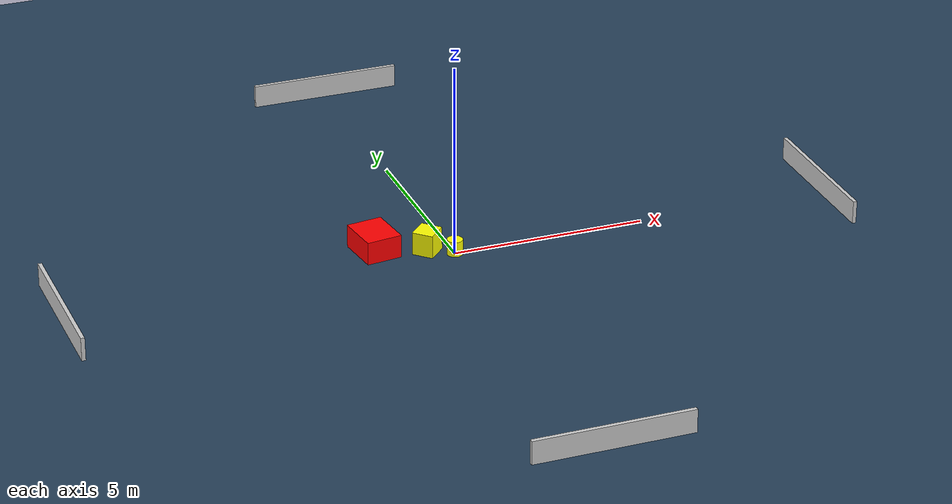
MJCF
<?xml version="1.0" ?>
<mujoco model="generated_environment">
  <option timestep="0.01" integrator="RK4" cone="elliptic"/>
  <default>
    <geom density="1"/>
  </default>
  <asset>
    <texture builtin="gradient" height="3072" name="skybox" rgb1="0.3 0.5 0.7" rgb2="0 0 0" type="skybox" width="512"/>
    <texture builtin="checker" height="300" name="groundplane" rgb1="0.2 0.3 0.4" rgb2="0.1 0.2 0.3" type="2d" width="300"/>
    <material name="groundplane" reflectance="0.2" texrepeat="5 5" texture="groundplane"/>
  </asset>
  <worldbody>
    <light dir="0 0 -1" directional="true" pos="0 0 1.5"/>
    <geom condim="3" friction="0.5 0.005 0.001" material="groundplane" name="floor" pos="0 0 0" size="0 0 0.05" type="plane"/>
    <body name="walls">
      <geom name="wall_1" condim="4" pos="-10.0 0.0 0.3" rgba="0.800000011920929 0.800000011920929 0.800000011920929 1.0" size="0.05 2.0 0.3" type="box"/>
      <geom name="wall_2" condim="4" pos="10.0 0.0 0.3" rgba="0.800000011920929 0.800000011920929 0.800000011920929 1.0" size="0.05 2.0 0.3" type="box"/>
      <geom name="wall_3" condim="4" pos="0.0 -10.0 0.3" rgba="0.800000011920929 0.800000011920929 0.800000011920929 1.0" size="2.0 0.05 0.3" type="box"/>
      <geom name="wall_4" condim="4" pos="0.0 10.0 0.3" rgba="0.800000011920929 0.800000011920929 0.800000011920929 1.0" size="2.0 0.05 0.3" type="box"/>
    </body>
    <body name="robot">
      <joint name="joint_x" type="slide" pos="0 0 0" axis="1 0 0"/>
      <joint name="joint_y" type="slide" pos="0 0 0" axis="0 1 0"/>
      <geom name="robot" type="cylinder" pos="0.0 0.0 0.2" size="0.2 0.2 0.0" mass="5.0" friction="1.0 0.005 0.0001" condim="4" rgba="1.0 1.0 0.0 1.0"/>
    </body>
    <body name="obstacle_1_movable">
      <geom name="obstacle_1_movable" condim="4" pos="-0.6008749086046582 0.34609801810484864 0.3" euler="0 0 315.5756213382686" friction="0.0 0.005 0.001" rgba="1.0 1.0 0.0 1.0" size="0.27259661856240763 0.2902257275745439 0.3" type="box" mass="0.1"/>
      <joint type="free"/>
    </body>
    <body name="obstacle_2_static">
      <geom name="obstacle_2_static" condim="4" pos="-1.8299825648754773 0.8003821567893356 0.3" euler="0 0 277.60114815002146" friction="0.0 0.005 0.001" rgba="1.0 0.0 0.0 1.0" size="0.5654486428025797 0.46470375270287306 0.3" type="box"/>
    </body>
  </worldbody>
  <actuator>
    <motor name="actuator_x" joint="joint_x" gear="1" ctrlrange="-1 1"/>
    <motor name="actuator_y" joint="joint_y" gear="1" ctrlrange="-1 1"/>
  </actuator>
</mujoco>
